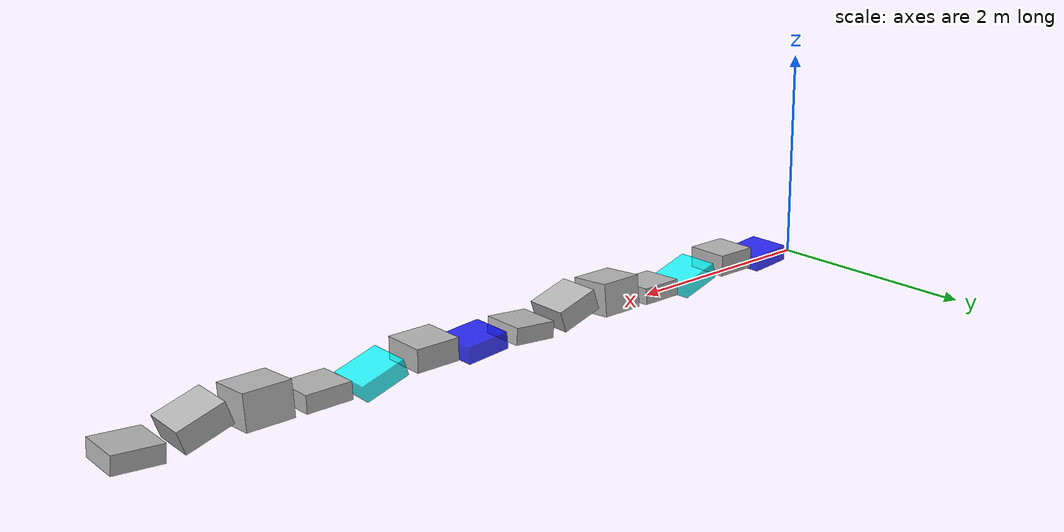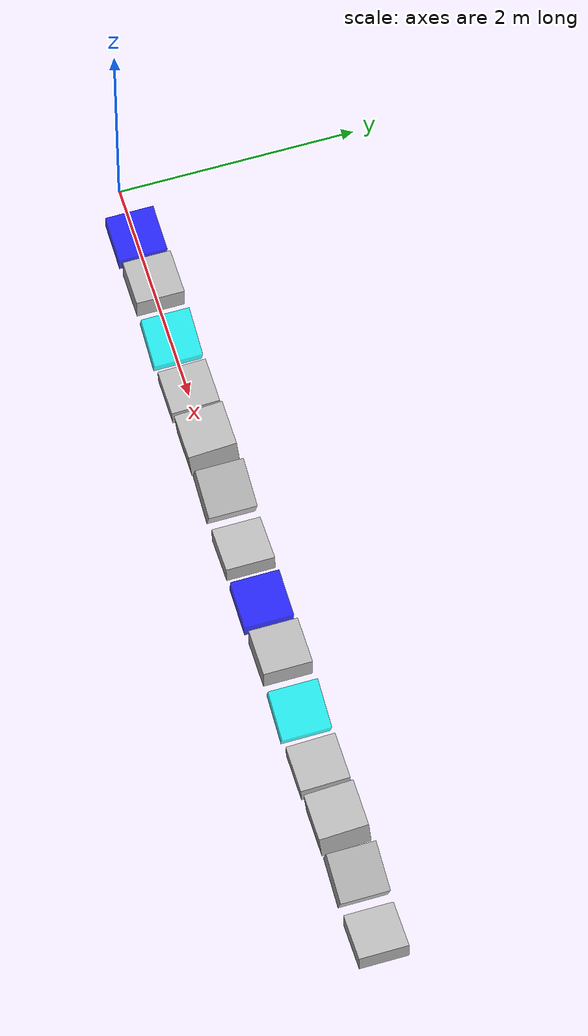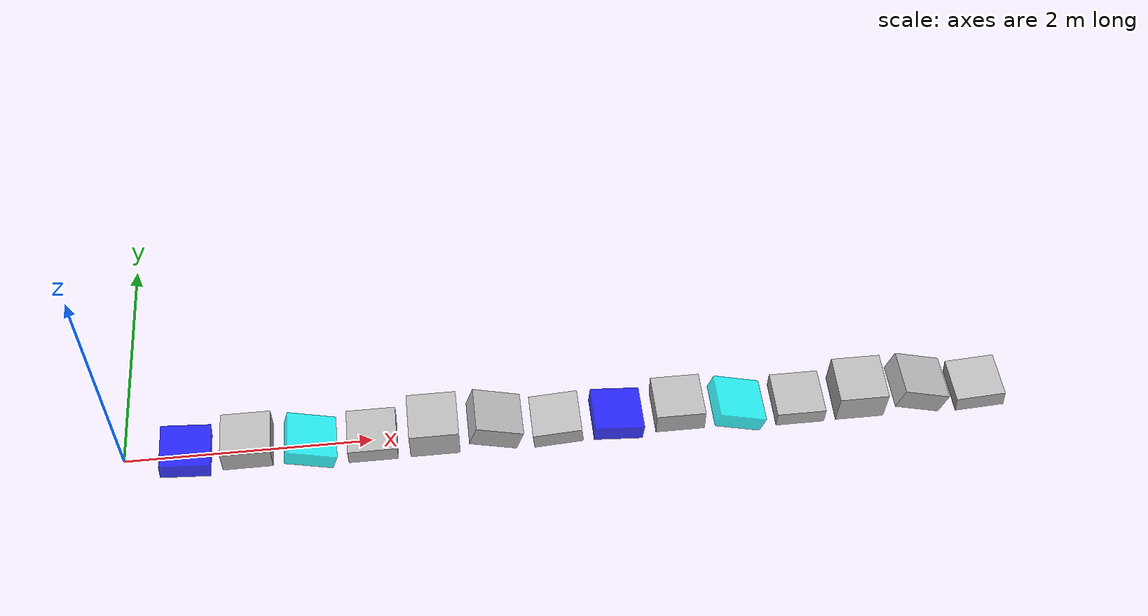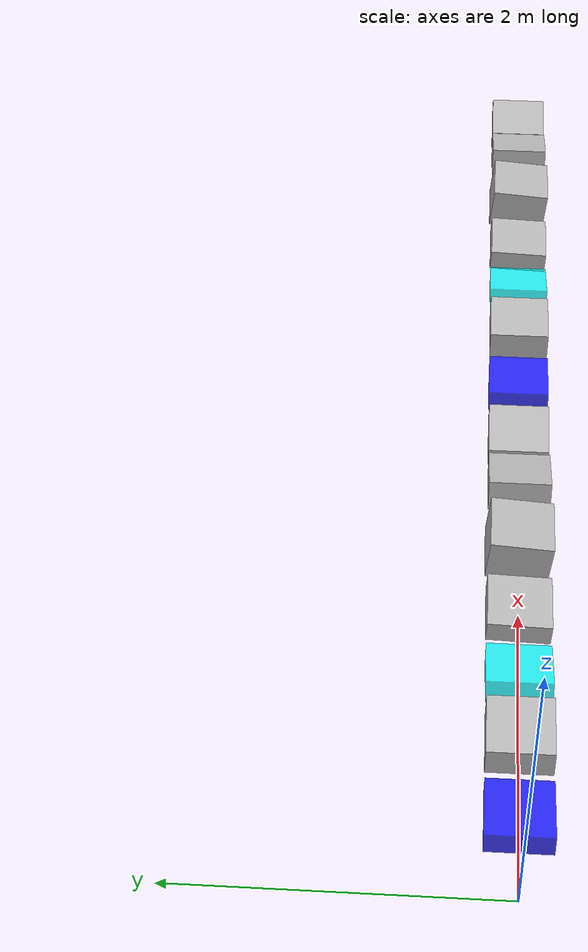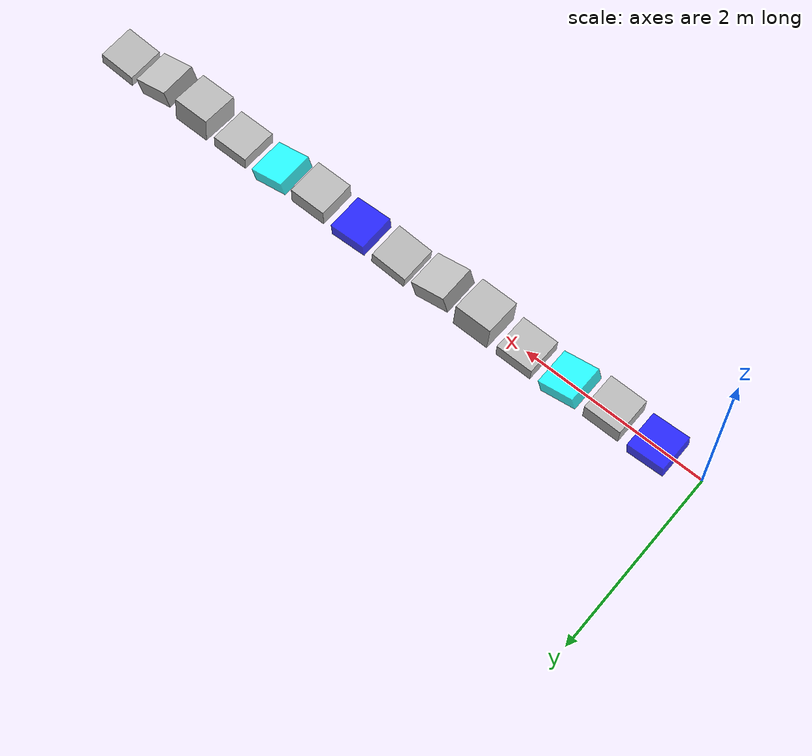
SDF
<sdf version='1.4'>
  <world name='terrain'>

    <model name='Box01'>
      <pose>0.50 0.0 0.075 0 220 0</pose>
      <link name='Box01'>
        <pose>0 0 0 0 0 0</pose>
        <collision name='collision'>
          <geometry>
            <box>
              <size>0.4 0.4 0.15</size>
            </box>
          </geometry>
        </collision>
        <visual name='visual'>
          <geometry>
            <box>
              <size>0.4 0.4 0.15</size>
            </box>
          </geometry>
          <material>
            <diffuse>0 0 1 .8</diffuse>
            <ambient>0 0 1 .8</ambient>
          </material>
        </visual>
      </link>0
      <static>1</static>
    </model>

    <model name='Box02'>
      <pose>1.00 0.0 0.15 0 0 0</pose>
      <link name='Box02'>
        <pose>0 0 0 0 0 0</pose>
        <collision name='collision'>
          <geometry>
            <box>
              <size>0.4 0.4 0.20</size>
            </box>
          </geometry>
        </collision>
        <visual name='visual'>
          <geometry>
            <box>
              <size>0.4 0.4 0.20</size>
            </box>
          </geometry>
        </visual>
      </link>
      <static>1</static>
    </model>

    <model name='Box03'>
      <pose>1.50 0.0 0.075 0 60 0</pose>
      <link name='Box03'>
        <pose>0 0 0 0 0 0</pose>
        <collision name='collision'>
          <geometry>
            <box>
              <size>0.4 0.4 0.15</size>
            </box>
          </geometry>
        </collision>
        <visual name='visual'>
          <geometry>
            <box>
              <size>0.4 0.4 0.15</size>
            </box>
          </geometry>
          <material>
            <diffuse>0 1 1 .8</diffuse>
            <ambient>0 1 1 .8</ambient>
          </material>
        </visual>
      </link>
      <static>1</static>
    </model>

    <model name='Box04'>
      <pose>2.00 0.0 0.075 110 0 0</pose>
      <link name='Box04'>
        <pose>0 0 0 0 0 0</pose>
        <collision name='collision'>
          <geometry>
            <box>
              <size>0.4 0.4 0.15</size>
            </box>
          </geometry>
        </collision>
        <visual name='visual'>
          <geometry>
            <box>
              <size>0.4 0.4 0.15</size>
            </box>
          </geometry>
        </visual>
      </link>
      <static>1</static>
    </model>

    <model name='Box05'>
      <pose>2.50 0.0 0.15 220 0 0</pose>
      <link name='Box05'>
        <pose>0 0 0 0 0 0</pose>
        <collision name='collision'>
          <geometry>
            <box>
              <size>0.4 0.4 0.30</size>
            </box>
          </geometry>
        </collision>
        <visual name='visual'>
          <geometry>
            <box>
              <size>0.4 0.4 0.30</size>
            </box>
          </geometry>
        </visual>
      </link>
      <static>1</static>
    </model>

    <model name='Box06'>
      <pose>3.00 0.0 0.15 0 60 0</pose>
      <link name='Box06'>
        <pose>0 0 0 0 0 0</pose>
        <collision name='collision'>
          <geometry>
            <box>
              <size>0.4 0.4 0.20</size>
            </box>
          </geometry>
        </collision>
        <visual name='visual'>
          <geometry>
            <box>
              <size>0.4 0.4 0.20</size>
            </box>
          </geometry>
        </visual>
      </link>
      <static>1</static>
    </model>

    <model name='Box07'>
      <pose>3.50 0.0 0.075 0 -220 0</pose>
      <link name='Box07'>
        <pose>0 0 0 0 0 0</pose>
        <collision name='collision'>
          <geometry>
            <box>
              <size>0.4 0.4 0.15</size>
            </box>
          </geometry>
        </collision>
        <visual name='visual'>
          <geometry>
            <box>
              <size>0.4 0.4 0.15</size>
            </box>
          </geometry>
        </visual>
      </link>
      <static>1</static>
    </model>

    <model name='Box08'>
      <pose>4.00 0.0 0.075 0 220 0</pose>
      <link name='Box08'>
        <pose>0 0 0 0 0 0</pose>
        <collision name='collision'>
          <geometry>
            <box>
              <size>0.4 0.4 0.15</size>
            </box>
          </geometry>
        </collision>
        <visual name='visual'>
          <geometry>
            <box>
              <size>0.4 0.4 0.15</size>
            </box>
          </geometry>
          <material>
            <diffuse>0 0 1 .8</diffuse>
            <ambient>0 0 1 .8</ambient>
          </material>
        </visual>
      </link>
      <static>1</static>
    </model>

    <model name='Box09'>
      <pose>4.50 0.0 0.15 0 0 0</pose>
      <link name='Box09'>
        <pose>0 0 0 0 0 0</pose>
        <collision name='collision'>
          <geometry>
            <box>
              <size>0.4 0.4 0.20</size>
            </box>
          </geometry>
        </collision>
        <visual name='visual'>
          <geometry>
            <box>
              <size>0.4 0.4 0.20</size>
            </box>
          </geometry>
        </visual>
      </link>
      <static>1</static>
    </model>

    <model name='Box10'>
      <pose>5.00 0.0 0.075 0 60 0</pose>
      <link name='Box10'>
        <pose>0 0 0 0 0 0</pose>
        <collision name='collision'>
          <geometry>
            <box>
              <size>0.4 0.4 0.15</size>
            </box>
          </geometry>
        </collision>
        <visual name='visual'>
          <geometry>
            <box>
              <size>0.4 0.4 0.15</size>
            </box>
          </geometry>
          <material>
            <diffuse>0 1 1 .8</diffuse>
            <ambient>0 1 1 .8</ambient>
          </material>
        </visual>
      </link>
      <static>1</static>
    </model>

    <model name='Box11'>
      <pose>5.50 0.0 0.075 110 0 0</pose>
      <link name='Box11'>
        <pose>0 0 0 0 0 0</pose>
        <collision name='collision'>
          <geometry>
            <box>
              <size>0.4 0.4 0.15</size>
            </box>
          </geometry>
        </collision>
        <visual name='visual'>
          <geometry>
            <box>
              <size>0.4 0.4 0.15</size>
            </box>
          </geometry>
        </visual>
      </link>
      <static>1</static>
    </model>

    <model name='Box12'>
      <pose>6.00 0.0 0.15 220 0 0</pose>
      <link name='Box12'>
        <pose>0 0 0 0 0 0</pose>
        <collision name='collision'>
          <geometry>
            <box>
              <size>0.4 0.4 0.30</size>
            </box>
          </geometry>
        </collision>
        <visual name='visual'>
          <geometry>
            <box>
              <size>0.4 0.4 0.30</size>
            </box>
          </geometry>
        </visual>
      </link>
      <static>1</static>
    </model>

    <model name='Box13'>
      <pose>6.50 0.0 0.15 0 60 0</pose>
      <link name='Box13'>
        <pose>0 0 0 0 0 0</pose>
        <collision name='collision'>
          <geometry>
            <box>
              <size>0.4 0.4 0.20</size>
            </box>
          </geometry>
        </collision>
        <visual name='visual'>
          <geometry>
            <box>
              <size>0.4 0.4 0.20</size>
            </box>
          </geometry>
        </visual>
      </link>
      <static>1</static>
    </model>

    <model name='Box14'>
      <pose>7.00 0.0 0.075 0 -220 0</pose>
      <link name='Box14'>
        <pose>0 0 0 0 0 0</pose>
        <collision name='collision'>
          <geometry>
            <box>
              <size>0.4 0.4 0.15</size>
            </box>
          </geometry>
        </collision>
        <visual name='visual'>
          <geometry>
            <box>
              <size>0.4 0.4 0.15</size>
            </box>
          </geometry>
        </visual>
      </link>
      <static>1</static>
    </model>

  </world>
</sdf>
